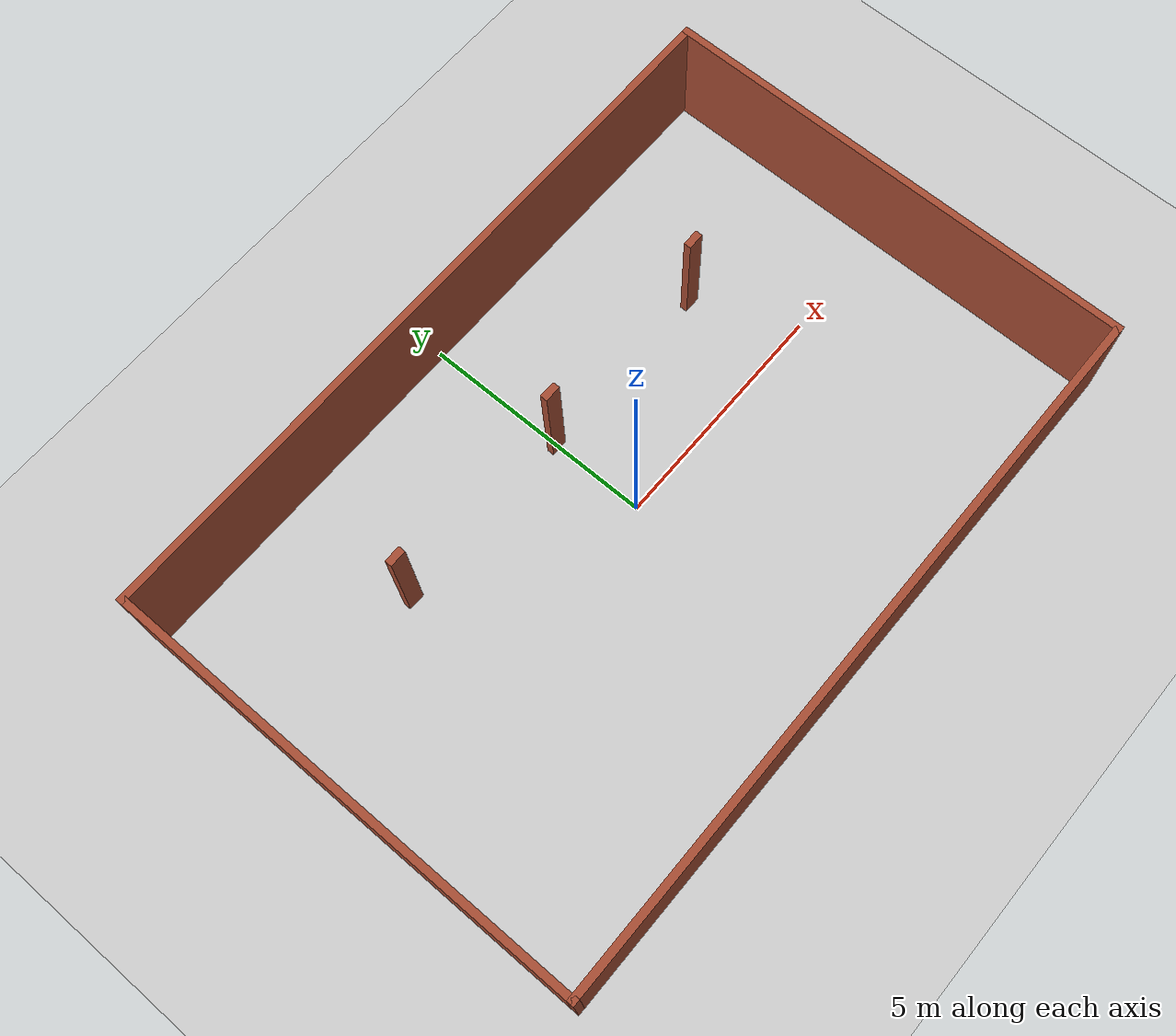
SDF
<sdf version="1.7">
 <world name="default">
  <light name="sun" type="directional">
   <pose>0 0 10 0 -0 0</pose>
   <diffuse>0.8 0.8 0.8 1</diffuse>
   <specular>0.2 0.2 0.2 1</specular>
   <attenuation>
    <range>1000</range>
    <constant>0.9</constant>
    <linear>0.01</linear>
    <quadratic>0.001</quadratic>
   </attenuation>
   <direction>-0.5 0.1 -0.9</direction>
   <spot><inner_angle>0</inner_angle><outer_angle>0</outer_angle><falloff>0</falloff></spot>
  </light>
  <model name="ground_plane">
   <static>1</static>
   <link name="link">
    <collision name="collision">
     <geometry><plane><normal>0 0 1</normal><size>100 100</size></plane></geometry>
     <surface>
      <contact><collide_bitmask>65535</collide_bitmask></contact>
      <friction><ode><mu>100</mu><mu2>50</mu2></ode></friction>
     </surface>
    </collision>
    <visual name="visual">
     <cast_shadows>0</cast_shadows>
     <geometry><plane><normal>0 0 1</normal><size>100 100</size></plane></geometry>
     <material>
      <script><uri>file://media/materials/scripts/gazebo.material</uri><name>Gazebo/Grey</name></script>
     </material>
    </visual>
   </link>
  </model>
  <gravity>0 0 -9.8</gravity>
  <magnetic_field>6e-06 2.3e-05 -4.2e-05</magnetic_field>
  <atmosphere type="adiabatic"/>
  <physics type="ode">
   <max_step_size>0.001</max_step_size>
   <real_time_factor>1</real_time_factor>
   <real_time_update_rate>1000</real_time_update_rate>
  </physics>
  <scene><ambient>0.4 0.4 0.4 1</ambient><background>0.7 0.7 0.7 1</background><shadows>1</shadows></scene>
  <spherical_coordinates>
   <surface_model>EARTH_WGS84</surface_model>
   <latitude_deg>0</latitude_deg>
   <longitude_deg>0</longitude_deg>
   <elevation>0</elevation>
   <heading_deg>0</heading_deg>
  </spherical_coordinates>
  <model name="farm1">
   <link name="Wall_12">
    <collision name="Wall_12_Collision">
     <geometry><box><size>10.15 0.15 2.5</size></box></geometry>
     <pose>0 0 1.25 0 -0 0</pose>
    </collision>
    <visual name="Wall_12_Visual">
     <pose>0 0 1.25 0 -0 0</pose>
     <geometry><box><size>10.15 0.15 2.5</size></box></geometry>
     <material>
      <script><uri>file://media/materials/scripts/gazebo.material</uri><name>Gazebo/Bricks</name></script>
      <ambient>1 1 1 1</ambient>
     </material>
     <meta><layer>0</layer></meta>
    </visual>
    <pose>7.5 0 0 0 -0 -1.5708</pose>
   </link>
   <link name="Wall_13">
    <collision name="Wall_13_Collision">
     <geometry><box><size>15.15 0.15 2.5</size></box></geometry>
     <pose>0 0 1.25 0 -0 0</pose>
    </collision>
    <visual name="Wall_13_Visual">
     <pose>0 0 1.25 0 -0 0</pose>
     <geometry><box><size>15.15 0.15 2.5</size></box></geometry>
     <material>
      <script><uri>file://media/materials/scripts/gazebo.material</uri><name>Gazebo/Bricks</name></script>
      <ambient>1 1 1 1</ambient>
     </material>
     <meta><layer>0</layer></meta>
    </visual>
    <pose>0 -5 0 0 -0 3.14159</pose>
   </link>
   <link name="Wall_14">
    <collision name="Wall_14_Collision">
     <geometry><box><size>10.15 0.15 2.5</size></box></geometry>
     <pose>0 0 1.25 0 -0 0</pose>
    </collision>
    <visual name="Wall_14_Visual">
     <pose>0 0 1.25 0 -0 0</pose>
     <geometry><box><size>10.15 0.15 2.5</size></box></geometry>
     <material>
      <script><uri>file://media/materials/scripts/gazebo.material</uri><name>Gazebo/Bricks</name></script>
      <ambient>1 1 1 1</ambient>
     </material>
     <meta><layer>0</layer></meta>
    </visual>
    <pose>-7.5 0 0 0 -0 1.5708</pose>
   </link>
   <link name="Wall_15">
    <collision name="Wall_15_Collision">
     <geometry><box><size>15.15 0.15 2.5</size></box></geometry>
     <pose>0 0 1.25 0 -0 0</pose>
    </collision>
    <visual name="Wall_15_Visual">
     <pose>0 0 1.25 0 -0 0</pose>
     <geometry><box><size>15.15 0.15 2.5</size></box></geometry>
     <material>
      <script><uri>file://media/materials/scripts/gazebo.material</uri><name>Gazebo/Bricks</name></script>
      <ambient>1 1 1 1</ambient>
     </material>
     <meta><layer>0</layer></meta>
    </visual>
    <pose>0 5 0 0 -0 0</pose>
   </link>
   <link name="Wall_35">
    <collision name="Wall_35_Collision">
     <geometry><box><size>0.35 0.15 2.5</size></box></geometry>
     <pose>0 0 1.25 0 -0 0</pose>
    </collision>
    <visual name="Wall_35_Visual">
     <pose>0 0 1.25 0 -0 0</pose>
     <geometry><box><size>0.35 0.15 2.5</size></box></geometry>
     <material>
      <script><uri>file://media/materials/scripts/gazebo.material</uri><name>Gazebo/Bricks</name></script>
      <ambient>1 1 1 1</ambient>
     </material>
     <meta><layer>0</layer></meta>
    </visual>
    <pose>-4 2 0 0 -0 0</pose>
   </link>
   <link name="Wall_37">
    <collision name="Wall_37_Collision">
     <geometry><box><size>0.350002 0.15 2.5</size></box></geometry>
     <pose>0 0 1.25 0 -0 0</pose>
    </collision>
    <visual name="Wall_37_Visual">
     <pose>0 0 1.25 0 -0 0</pose>
     <geometry><box><size>0.350002 0.15 2.5</size></box></geometry>
     <material>
      <script><uri>file://media/materials/scripts/gazebo.material</uri><name>Gazebo/Bricks</name></script>
      <ambient>1 1 1 1</ambient>
     </material>
     <meta><layer>0</layer></meta>
    </visual>
    <pose>0 2 0 0 -0 0</pose>
   </link>
   <link name="Wall_40">
    <collision name="Wall_40_Collision">
     <geometry><box><size>0.35 0.15 2.5</size></box></geometry>
     <pose>0 0 1.25 0 -0 0</pose>
    </collision>
    <visual name="Wall_40_Visual">
     <pose>0 0 1.25 0 -0 0</pose>
     <geometry><box><size>0.35 0.15 2.5</size></box></geometry>
     <material>
      <script><uri>file://media/materials/scripts/gazebo.material</uri><name>Gazebo/Bricks</name></script>
      <ambient>1 1 1 1</ambient>
     </material>
     <meta><layer>0</layer></meta>
    </visual>
    <pose>4 2 0 0 -0 0</pose>
   </link>
   <static>1</static>
  </model>
 </world>
</sdf>
